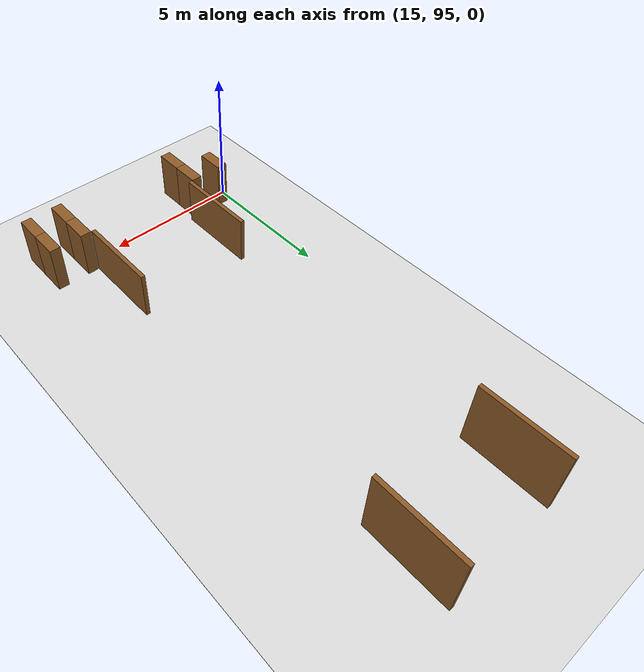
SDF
<sdf version="1.9">
 <world name="realistic_warehouse_150x200m">
  <model name="ground_plane">
   <static>true</static>
   <pose>68.5 102.0 0 0 0 0</pose>
   <link name="ground_link">
    <visual name="ground_visual">
     <geometry><box><size>127.0 194.0 0.01</size></box></geometry>
     <material><ambient>0.85 0.85 0.85 1.0</ambient><diffuse>0.85 0.85 0.85 1.0</diffuse></material>
    </visual>
    <collision name="ground_visual_collision">
     <geometry><box><size>127.0 194.0 0.01</size></box></geometry>
    </collision>
    <collision name="ground_collision">
     <geometry><plane><normal>0 0 1</normal><size>127.0 194.0</size></plane></geometry>
    </collision>
   </link>
  </model>
  <model name="aisle_R_Zone_D_A1_entry_702">
   <static>true</static>
   <pose>16.9 110.0 1.25 0 0 0</pose>
   <link name="aisle_R_Zone_D_A1_entry_702_link">
    <visual name="aisle_R_Zone_D_A1_entry_702_vis">
     <geometry><box><size>0.15 3.0 2.5</size></box></geometry>
     <material><ambient>0.55 0.35 0.15 1.0</ambient><diffuse>0.55 0.35 0.15 1.0</diffuse></material>
    </visual>
    <collision name="aisle_R_Zone_D_A1_entry_702_vis_collision">
     <geometry><box><size>0.15 3.0 2.5</size></box></geometry>
    </collision>
   </link>
  </model>
  <model name="aisle_L_Zone_D_A2_entry_721">
   <static>true</static>
   <pose>21.1 110.0 1.25 0 0 0</pose>
   <link name="aisle_L_Zone_D_A2_entry_721_link">
    <visual name="aisle_L_Zone_D_A2_entry_721_vis">
     <geometry><box><size>0.15 3.0 2.5</size></box></geometry>
     <material><ambient>0.55 0.35 0.15 1.0</ambient><diffuse>0.55 0.35 0.15 1.0</diffuse></material>
    </visual>
    <collision name="aisle_L_Zone_D_A2_entry_721_vis_collision">
     <geometry><box><size>0.15 3.0 2.5</size></box></geometry>
    </collision>
   </link>
  </model>
  <model name="rack_Zone_G_A1_S7_1078">
   <static>true</static>
   <pose>15.4 95.0 0.9 0 0 0</pose>
   <link name="rack_Zone_G_A1_S7_1078_link">
    <visual name="rack_Zone_G_A1_S7_1078_vis">
     <geometry><box><size>0.4 1.0 1.8</size></box></geometry>
     <material><ambient>0.55 0.35 0.15 1.0</ambient><diffuse>0.55 0.35 0.15 1.0</diffuse></material>
    </visual>
    <collision name="rack_Zone_G_A1_S7_1078_vis_collision">
     <geometry><box><size>0.4 1.0 1.8</size></box></geometry>
    </collision>
   </link>
  </model>
  <model name="rack_Zone_G_A1_S7_1079">
   <static>true</static>
   <pose>16.6 94.0 0.9 0 0 0</pose>
   <link name="rack_Zone_G_A1_S7_1079_link">
    <visual name="rack_Zone_G_A1_S7_1079_vis">
     <geometry><box><size>0.4 1.0 1.8</size></box></geometry>
     <material><ambient>0.55 0.35 0.15 1.0</ambient><diffuse>0.55 0.35 0.15 1.0</diffuse></material>
    </visual>
    <collision name="rack_Zone_G_A1_S7_1079_vis_collision">
     <geometry><box><size>0.4 1.0 1.8</size></box></geometry>
    </collision>
   </link>
  </model>
  <model name="rack_Zone_G_A1_S7_1080">
   <static>true</static>
   <pose>16.6 95.0 0.9 0 0 0</pose>
   <link name="rack_Zone_G_A1_S7_1080_link">
    <visual name="rack_Zone_G_A1_S7_1080_vis">
     <geometry><box><size>0.4 1.0 1.8</size></box></geometry>
     <material><ambient>0.55 0.35 0.15 1.0</ambient><diffuse>0.55 0.35 0.15 1.0</diffuse></material>
    </visual>
    <collision name="rack_Zone_G_A1_S7_1080_vis_collision">
     <geometry><box><size>0.4 1.0 1.8</size></box></geometry>
    </collision>
   </link>
  </model>
  <model name="aisle_R_Zone_G_A1_exit_1083">
   <static>true</static>
   <pose>16.9 97.0 0.9 0 0 0</pose>
   <link name="aisle_R_Zone_G_A1_exit_1083_link">
    <visual name="aisle_R_Zone_G_A1_exit_1083_vis">
     <geometry><box><size>0.15 3.0 1.8</size></box></geometry>
     <material><ambient>0.55 0.35 0.15 1.0</ambient><diffuse>0.55 0.35 0.15 1.0</diffuse></material>
    </visual>
    <collision name="aisle_R_Zone_G_A1_exit_1083_vis_collision">
     <geometry><box><size>0.15 3.0 1.8</size></box></geometry>
    </collision>
   </link>
  </model>
  <model name="rack_Zone_G_A2_S7_1121">
   <static>true</static>
   <pose>21.4 94.0 0.9 0 0 0</pose>
   <link name="rack_Zone_G_A2_S7_1121_link">
    <visual name="rack_Zone_G_A2_S7_1121_vis">
     <geometry><box><size>0.4 1.0 1.8</size></box></geometry>
     <material><ambient>0.55 0.35 0.15 1.0</ambient><diffuse>0.55 0.35 0.15 1.0</diffuse></material>
    </visual>
    <collision name="rack_Zone_G_A2_S7_1121_vis_collision">
     <geometry><box><size>0.4 1.0 1.8</size></box></geometry>
    </collision>
   </link>
  </model>
  <model name="rack_Zone_G_A2_S7_1122">
   <static>true</static>
   <pose>21.4 95.0 0.9 0 0 0</pose>
   <link name="rack_Zone_G_A2_S7_1122_link">
    <visual name="rack_Zone_G_A2_S7_1122_vis">
     <geometry><box><size>0.4 1.0 1.8</size></box></geometry>
     <material><ambient>0.55 0.35 0.15 1.0</ambient><diffuse>0.55 0.35 0.15 1.0</diffuse></material>
    </visual>
    <collision name="rack_Zone_G_A2_S7_1122_vis_collision">
     <geometry><box><size>0.4 1.0 1.8</size></box></geometry>
    </collision>
   </link>
  </model>
  <model name="rack_Zone_G_A2_S7_1123">
   <static>true</static>
   <pose>22.6 94.0 0.9 0 0 0</pose>
   <link name="rack_Zone_G_A2_S7_1123_link">
    <visual name="rack_Zone_G_A2_S7_1123_vis">
     <geometry><box><size>0.4 1.0 1.8</size></box></geometry>
     <material><ambient>0.55 0.35 0.15 1.0</ambient><diffuse>0.55 0.35 0.15 1.0</diffuse></material>
    </visual>
    <collision name="rack_Zone_G_A2_S7_1123_vis_collision">
     <geometry><box><size>0.4 1.0 1.8</size></box></geometry>
    </collision>
   </link>
  </model>
  <model name="rack_Zone_G_A2_S7_1124">
   <static>true</static>
   <pose>22.6 95.0 0.9 0 0 0</pose>
   <link name="rack_Zone_G_A2_S7_1124_link">
    <visual name="rack_Zone_G_A2_S7_1124_vis">
     <geometry><box><size>0.4 1.0 1.8</size></box></geometry>
     <material><ambient>0.55 0.35 0.15 1.0</ambient><diffuse>0.55 0.35 0.15 1.0</diffuse></material>
    </visual>
    <collision name="rack_Zone_G_A2_S7_1124_vis_collision">
     <geometry><box><size>0.4 1.0 1.8</size></box></geometry>
    </collision>
   </link>
  </model>
  <model name="aisle_L_Zone_G_A2_exit_1126">
   <static>true</static>
   <pose>21.1 97.0 0.9 0 0 0</pose>
   <link name="aisle_L_Zone_G_A2_exit_1126_link">
    <visual name="aisle_L_Zone_G_A2_exit_1126_vis">
     <geometry><box><size>0.15 3.0 1.8</size></box></geometry>
     <material><ambient>0.55 0.35 0.15 1.0</ambient><diffuse>0.55 0.35 0.15 1.0</diffuse></material>
    </visual>
    <collision name="aisle_L_Zone_G_A2_exit_1126_vis_collision">
     <geometry><box><size>0.15 3.0 1.8</size></box></geometry>
    </collision>
   </link>
  </model>
 </world>
</sdf>
